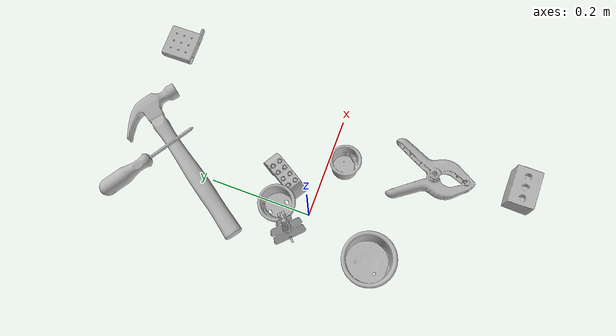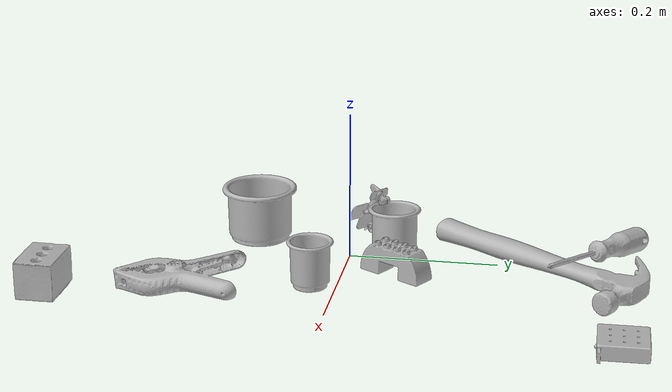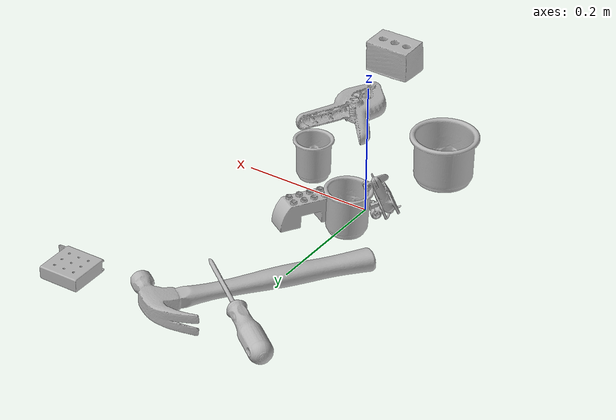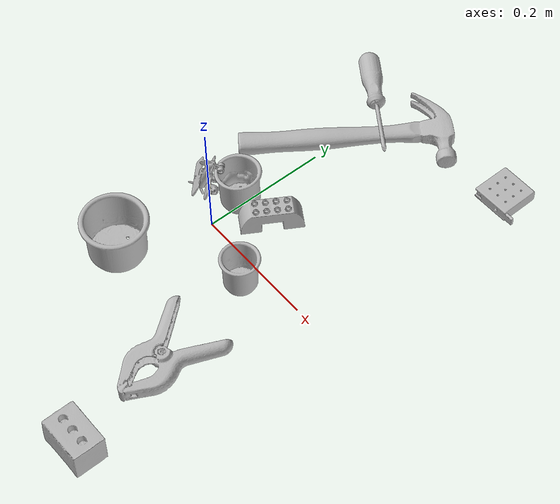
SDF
<sdf version="1.4">
  <world name="default">
    <light name="light1" type="point">
      <pose>0 0 1 0 0 0</pose>
      <diffuse>3 3 3 1</diffuse>
      <specular>3 3 3 1</specular>
    </light>
    <light name="light2" type="point">
      <pose>0 0.5 2 0 0 0</pose>
      <diffuse>1 1 1 1</diffuse>
      <specular>1 1 1 1</specular>
    </light>
    <light name="light3" type="point">
      <pose>0 0.5 2 0 0 0</pose>
      <diffuse>3 3 3 1</diffuse>
      <specular>3 3 3 1</specular>
    </light>
    <scene>
      <ambient>0.7 0.7 0.7</ambient>
    </scene>
    <model name="cup1">
      <link name="link_cup1">
        <collision name="default">
          <geometry>
            <mesh>
              <uri>model://j_cups/collision_meshes/collision.obj</uri>
              <scale>1.0 1.0 1.0</scale>
            </mesh>
          </geometry>
          <surface>
            <friction>
              <ode>
                <mu>0.5</mu>
                <mu2>0.5</mu2>
              </ode>
            </friction>
          <contact>
        <ode>
            <max_vel>0</max_vel>
            <min_depth>0.0001</min_depth>
            <kp>1e8</kp>
        </ode>
    </contact></surface>
        </collision>
        <visual name="default">
          <geometry>
            <mesh>
              <uri>model://j_cups/visual_meshes/visual.dae</uri>
              <scale>1.0 1.0 1.0</scale>
            </mesh>
          </geometry>
        </visual>
        <inertial>
          <mass>0.1112113818526268</mass>
          <pose>0.0006164852529764175 0.0005398975918069482 -0.0013479019980877638 0.030303955005909274 0.03757984422505388 0.4386955526072484</pose>
          <inertia>
            <ixx>0.00016329347</ixx>
            <iyy>0.00016499148</iyy>
            <izz>0.00018824349</izz>
            <ixy>0</ixy>
            <ixz>0</ixz>
            <iyz>0</iyz>
          </inertia>
        </inertial>
      </link>
      <pose>-0.04832371696829796 -0.13520275056362152 0.03798900917172432 -5.3769379046185776e-06 -4.703304393199317e-06 -1.6036230695190543</pose>
    </model>
    <model name="cup2">
      <link name="link_cup2">
        <collision name="default">
          <geometry>
            <mesh>
              <uri>model://b_cups/collision_meshes/collision.obj</uri>
              <scale>1.0 1.0 1.0</scale>
            </mesh>
          </geometry>
          <surface>
            <friction>
              <ode>
                <mu>0.5</mu>
                <mu2>0.5</mu2>
              </ode>
            </friction>
          <contact>
        <ode>
            <max_vel>0</max_vel>
            <min_depth>0.0001</min_depth>
            <kp>1e8</kp>
        </ode>
    </contact></surface>
        </collision>
        <visual name="default">
          <geometry>
            <mesh>
              <uri>model://b_cups/visual_meshes/visual.dae</uri>
              <scale>1.0 1.0 1.0</scale>
            </mesh>
          </geometry>
        </visual>
        <inertial>
          <mass>0.040588438510894775</mass>
          <pose>0.0005182006862014532 0.001805859268642962 -0.001338181202299893 0.11356319114734177 0.03872522211554688 -0.34569586720892936</pose>
          <inertia>
            <ixx>2.6567977e-05</ixx>
            <iyy>2.6063572e-05</iyy>
            <izz>2.235645e-05</izz>
            <ixy>0</ixy>
            <ixz>0</ixz>
            <iyz>0</iyz>
          </inertia>
        </inertial>
      </link>
      <pose>0.11213181167840958 -0.033461250364780426 0.03199629858136177 -0.007656346022206263 -0.0037772919846616082 -2.2027011590955365</pose>
    </model>
    <model name="cup3">
      <link name="link_cup3">
        <collision name="default">
          <geometry>
            <mesh>
              <uri>model://d_cups/collision_meshes/collision.obj</uri>
              <scale>1.0 1.0 1.0</scale>
            </mesh>
          </geometry>
          <surface>
            <friction>
              <ode>
                <mu>0.5</mu>
                <mu2>0.5</mu2>
              </ode>
            </friction>
          <contact>
        <ode>
            <max_vel>0</max_vel>
            <min_depth>0.0001</min_depth>
            <kp>1e8</kp>
        </ode>
    </contact></surface>
        </collision>
        <visual name="default">
          <geometry>
            <mesh>
              <uri>model://d_cups/visual_meshes/visual.dae</uri>
              <scale>1.0 1.0 1.0</scale>
            </mesh>
          </geometry>
        </visual>
        <inertial>
          <mass>0.030152590945363045</mass>
          <pose>0.000806804746389389 0.0019117394695058465 -0.0022666517179459333 0.2401234305416289 -0.2470973002062907 0.5942515272324471</pose>
          <inertia>
            <ixx>2.5244808e-05</ixx>
            <iyy>2.517175e-05</iyy>
            <izz>2.2850849e-05</izz>
            <ixy>0</ixy>
            <ixz>0</ixz>
            <iyz>0</iyz>
          </inertia>
        </inertial>
      </link>
      <pose>-0.007611398585140705 0.059537358582019806 0.035453006625175476 -0.04100103104549944 0.0028959123221137823 1.8729536514550864</pose>
    </model>
    <model name="toy1">
      <link name="link_toy1">
        <collision name="default">
          <geometry>
            <mesh>
              <uri>model://e_lego_duplo/collision_meshes/collision.obj</uri>
              <scale>1.0 1.0 1.0</scale>
            </mesh>
          </geometry>
          <surface>
            <friction>
              <ode>
                <mu>0.5</mu>
                <mu2>0.5</mu2>
              </ode>
            </friction>
          <contact>
        <ode>
            <max_vel>0</max_vel>
            <min_depth>0.0001</min_depth>
            <kp>1e8</kp>
        </ode>
    </contact></surface>
        </collision>
        <visual name="default">
          <geometry>
            <mesh>
              <uri>model://e_lego_duplo/visual_meshes/visual.dae</uri>
              <scale>1.0 1.0 1.0</scale>
            </mesh>
          </geometry>
        </visual>
        <inertial>
          <mass>0.09282131493091583</mass>
          <pose>0.0003256045747548342 0.00023485456767957658 0.0019521460635587573 -0.022567664257634346 -6.825452093688492e-05 -0.007625138047361518</pose>
          <inertia>
            <ixx>1.9356308e-05</ixx>
            <iyy>7.944328e-05</iyy>
            <izz>7.736177e-05</izz>
            <ixy>0</ixy>
            <ixz>0</ixz>
            <iyz>0</iyz>
          </inertia>
        </inertial>
      </link>
      <pose>0.05402827262878418 0.0700283870100975 0.02180902287364006 3.7310438096893573e-06 -6.000060117414205e-07 -2.110149014501114</pose>
    </model>
    <model name="toy2">
      <link name="link_toy2">
        <collision name="default">
          <geometry>
            <mesh>
              <uri>model://nine_hole_peg_test/collision_meshes/collision.obj</uri>
              <scale>0.5 0.5 0.5</scale>
            </mesh>
          </geometry>
          <surface>
            <friction>
              <ode>
                <mu>0.5</mu>
                <mu2>0.5</mu2>
              </ode>
            </friction>
          <contact>
        <ode>
            <max_vel>0</max_vel>
            <min_depth>0.0001</min_depth>
            <kp>1e8</kp>
        </ode>
    </contact></surface>
        </collision>
        <visual name="default">
          <geometry>
            <mesh>
              <uri>model://nine_hole_peg_test/visual_meshes/visual.dae</uri>
              <scale>0.5 0.5 0.5</scale>
            </mesh>
          </geometry>
        </visual>
        <inertial>
          <mass>0.0661587193608284</mass>
          <pose>-0.002308693015947938 -0.0048238071613013744 1.3230345757619943e-05 -0.0014666794270044752 0.0007194176174711586 -0.6342418340283942</pose>
          <inertia>
            <ixx>2.5862508e-05</ixx>
            <iyy>2.4147552e-05</iyy>
            <izz>4.531874e-05</izz>
            <ixy>0</ixy>
            <ixz>0</ixz>
            <iyz>0</iyz>
          </inertia>
        </inertial>
      </link>
      <pose>0.2463134080171585 0.365303099155426 0.010385502129793167 -7.3564493010665335e-09 -1.77751841558677e-08 -1.5505146424955736</pose>
    </model>
    <model name="toy3">
      <link name="link_toy3">
        <collision name="default">
          <geometry>
            <mesh>
              <uri>model://foam_brick/collision_meshes/collision.obj</uri>
              <scale>1.0 1.0 1.0</scale>
            </mesh>
          </geometry>
          <surface>
            <friction>
              <ode>
                <mu>0.5</mu>
                <mu2>0.5</mu2>
              </ode>
            </friction>
          <contact>
        <ode>
            <max_vel>0</max_vel>
            <min_depth>0.0001</min_depth>
            <kp>1e8</kp>
        </ode>
    </contact></surface>
        </collision>
        <visual name="default">
          <geometry>
            <mesh>
              <uri>model://foam_brick/visual_meshes/visual.dae</uri>
              <scale>1.0 1.0 1.0</scale>
            </mesh>
          </geometry>
        </visual>
        <inertial>
          <mass>0.15239986777305603</mass>
          <pose>-0.00025224717683158815 0.0003458431747276336 -0.00025321010616607964 -0.29401565585717926 0.017274441097588973 -0.0007449887293440311</pose>
          <inertia>
            <ixx>6.6571105e-05</ixx>
            <iyy>0.00010628419</iyy>
            <izz>0.00010763494</izz>
            <ixy>0</ixy>
            <ixz>0</ixz>
            <iyz>0</iyz>
          </inertia>
        </inertial>
      </link>
      <pose>0.18297553062438965 -0.36909544467926025 0.02592279389500618 0.013416785442264288 0.004153050948322547 -3.1409149671826992</pose>
    </model>
    <model name="toy4">
      <link name="link_toy4">
        <collision name="default">
          <geometry>
            <mesh>
              <uri>model://a_toy_airplane/collision_meshes/collision.obj</uri>
              <scale>0.25 0.25 0.25</scale>
            </mesh>
          </geometry>
          <surface>
            <friction>
              <ode>
                <mu>0.5</mu>
                <mu2>0.5</mu2>
              </ode>
            </friction>
          <contact>
        <ode>
            <max_vel>0</max_vel>
            <min_depth>0.0001</min_depth>
            <kp>1e8</kp>
        </ode>
    </contact></surface>
        </collision>
        <visual name="default">
          <geometry>
            <mesh>
              <uri>model://a_toy_airplane/visual_meshes/visual.dae</uri>
              <scale>0.25 0.25 0.25</scale>
            </mesh>
          </geometry>
        </visual>
        <inertial>
          <mass>0.01630575954914093</mass>
          <pose>0.006291272584348917 -0.0009268299327231944 -0.0002990612993016839 -0.012016942866631759 -0.1466350865210375 0.004149072887705313</pose>
          <inertia>
            <ixx>3.7008767e-06</ixx>
            <iyy>5.392928e-06</iyy>
            <izz>6.314456e-06</izz>
            <ixy>0</ixy>
            <ixz>0</ixz>
            <iyz>0</iyz>
          </inertia>
        </inertial>
      </link>
      <pose>-0.042785078287124634 0.02611713483929634 0.055514559149742126 -0.14796636466883686 1.3446283114460609 -2.4948512735144828</pose>
    </model>
    <model name="hardware1">
      <link name="link_hardware1">
        <collision name="default">
          <geometry>
            <mesh>
              <uri>model://phillips_screwdriver/collision_meshes/collision.obj</uri>
              <scale>1.0 1.0 1.0</scale>
            </mesh>
          </geometry>
          <surface>
            <friction>
              <ode>
                <mu>0.5</mu>
                <mu2>0.5</mu2>
              </ode>
            </friction>
          <contact>
        <ode>
            <max_vel>0</max_vel>
            <min_depth>0.0001</min_depth>
            <kp>1e8</kp>
        </ode>
    </contact></surface>
        </collision>
        <visual name="default">
          <geometry>
            <mesh>
              <uri>model://phillips_screwdriver/visual_meshes/visual.dae</uri>
              <scale>1.0 1.0 1.0</scale>
            </mesh>
          </geometry>
        </visual>
        <inertial>
          <mass>0.05757145583629608</mass>
          <pose>-0.04777182266116142 0.001036230125464499 -0.000455554953077808 -0.1572215307256514 0.005850991069928943 -0.0021567397451199392</pose>
          <inertia>
            <ixx>6.764056e-06</ixx>
            <iyy>8.480946e-05</iyy>
            <izz>8.4881525e-05</izz>
            <ixy>0</ixy>
            <ixz>0</ixz>
            <iyz>0</iyz>
          </inertia>
        </inertial>
      </link>
      <pose>-0.01223670318722725 0.3314596116542816 0.025146231055259705 0.05781281633489333 -0.09528004547599608 -0.5993828018372198</pose>
    </model>
    <model name="hardware2">
      <link name="link_hardware2">
        <collision name="default">
          <geometry>
            <mesh>
              <uri>model://hammer/collision_meshes/collision.obj</uri>
              <scale>1.0 1.0 1.0</scale>
            </mesh>
          </geometry>
          <surface>
            <friction>
              <ode>
                <mu>0.5</mu>
                <mu2>0.5</mu2>
              </ode>
            </friction>
          <contact>
        <ode>
            <max_vel>0</max_vel>
            <min_depth>0.0001</min_depth>
            <kp>1e8</kp>
        </ode>
    </contact></surface>
        </collision>
        <visual name="default">
          <geometry>
            <mesh>
              <uri>model://hammer/visual_meshes/visual.dae</uri>
              <scale>1.0 1.0 1.0</scale>
            </mesh>
          </geometry>
        </visual>
        <inertial>
          <mass>0.19043192267417908</mass>
          <pose>0.00941577646881342 -0.011892358772456646 -0.0001235063245985657 0.023155672419862355 -0.004792164441448863 -0.012760315407460211</pose>
          <inertia>
            <ixx>8.15718e-05</ixx>
            <iyy>0.0022103586</iyy>
            <izz>0.002273686</izz>
            <ixy>0</ixy>
            <ixz>0</ixz>
            <iyz>0</iyz>
          </inertia>
        </inertial>
      </link>
      <pose>0.0069012995809316635 0.2695389986038208 0.01626737415790558 -0.005199142597746672 -0.0013802376445646593 0.9558888974283829</pose>
    </model>
    <model name="hardware3">
      <link name="link_hardware3">
        <collision name="default">
          <geometry>
            <mesh>
              <uri>model://large_clamp/collision_meshes/collision.obj</uri>
              <scale>1.0 1.0 1.0</scale>
            </mesh>
          </geometry>
          <surface>
            <friction>
              <ode>
                <mu>0.5</mu>
                <mu2>0.5</mu2>
              </ode>
            </friction>
          <contact>
        <ode>
            <max_vel>0</max_vel>
            <min_depth>0.0001</min_depth>
            <kp>1e8</kp>
        </ode>
    </contact></surface>
        </collision>
        <visual name="default">
          <geometry>
            <mesh>
              <uri>model://large_clamp/visual_meshes/visual.dae</uri>
              <scale>1.0 1.0 1.0</scale>
            </mesh>
          </geometry>
        </visual>
        <inertial>
          <mass>0.18636001646518707</mass>
          <pose>0.006369354669004679 0.0003585688828025013 -0.0001839799078879878 -0.0021330740505354343 0.009671591251539349 0.02663317297682702</pose>
          <inertia>
            <ixx>0.0001644205</ixx>
            <iyy>0.00031224336</iyy>
            <izz>0.00045169977</izz>
            <ixy>0</ixy>
            <ixz>0</ixz>
            <iyz>0</iyz>
          </inertia>
        </inertial>
      </link>
      <pose>0.15065115690231323 -0.20010147988796234 0.018503768369555473 -0.011643738334981207 0.0469302054077864 -1.4805533787531253</pose>
    </model>
  <physics type="ode">
      <max_contacts>50</max_contacts>
      <ode>
        <solver>
          <type>quick</type>
          <iters>75</iters>
        </solver>
        <constraints>
          <contact_max_correcting_vel>0</contact_max_correcting_vel>
          <contact_surface_layer>0</contact_surface_layer>
        </constraints>
      </ode>
    </physics></world>
</sdf>
